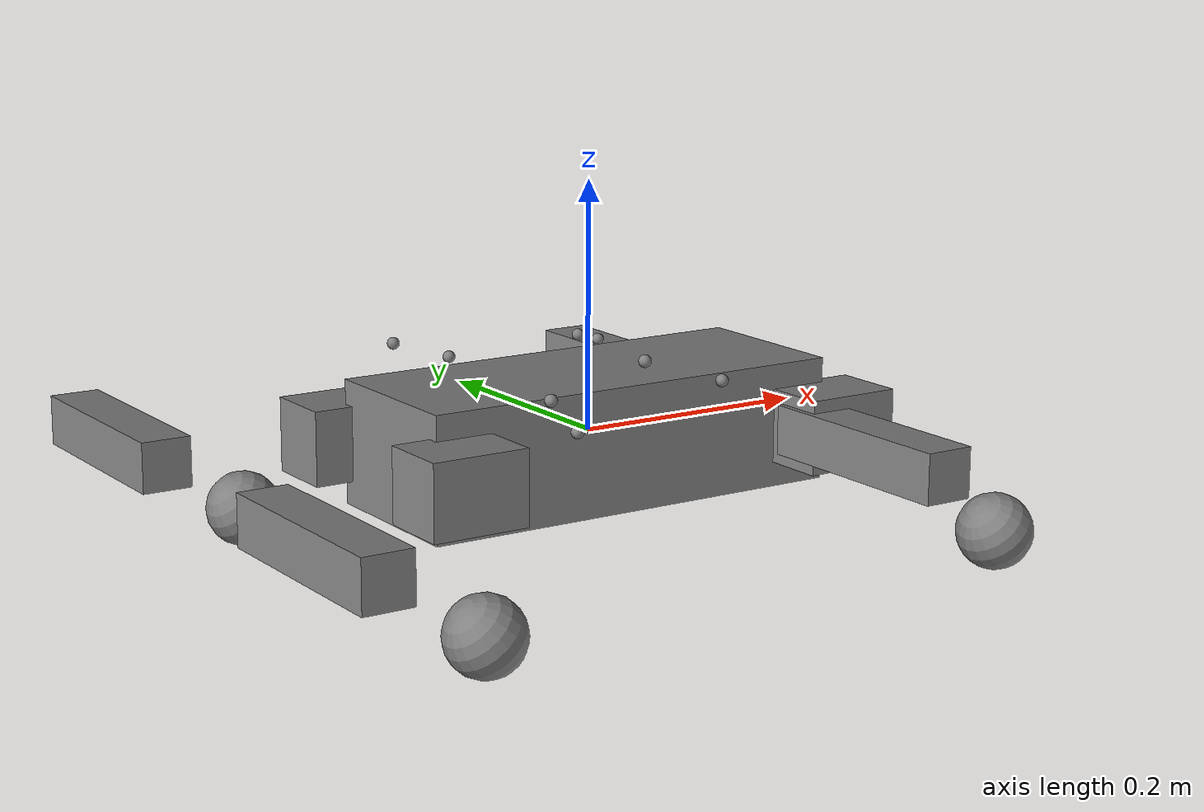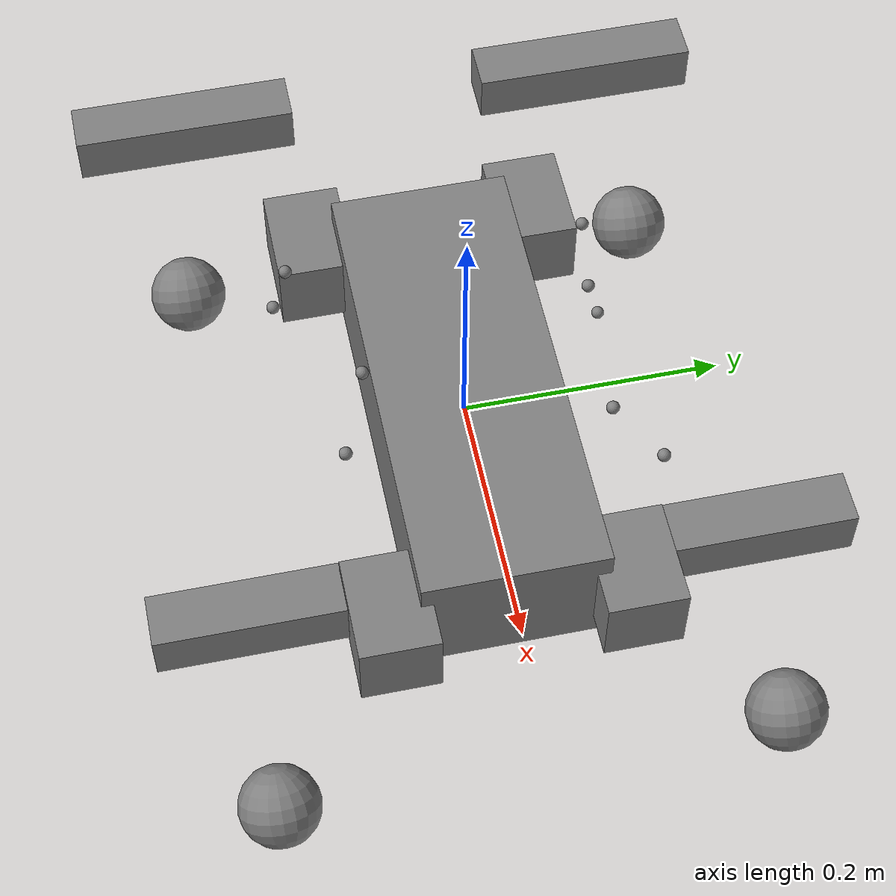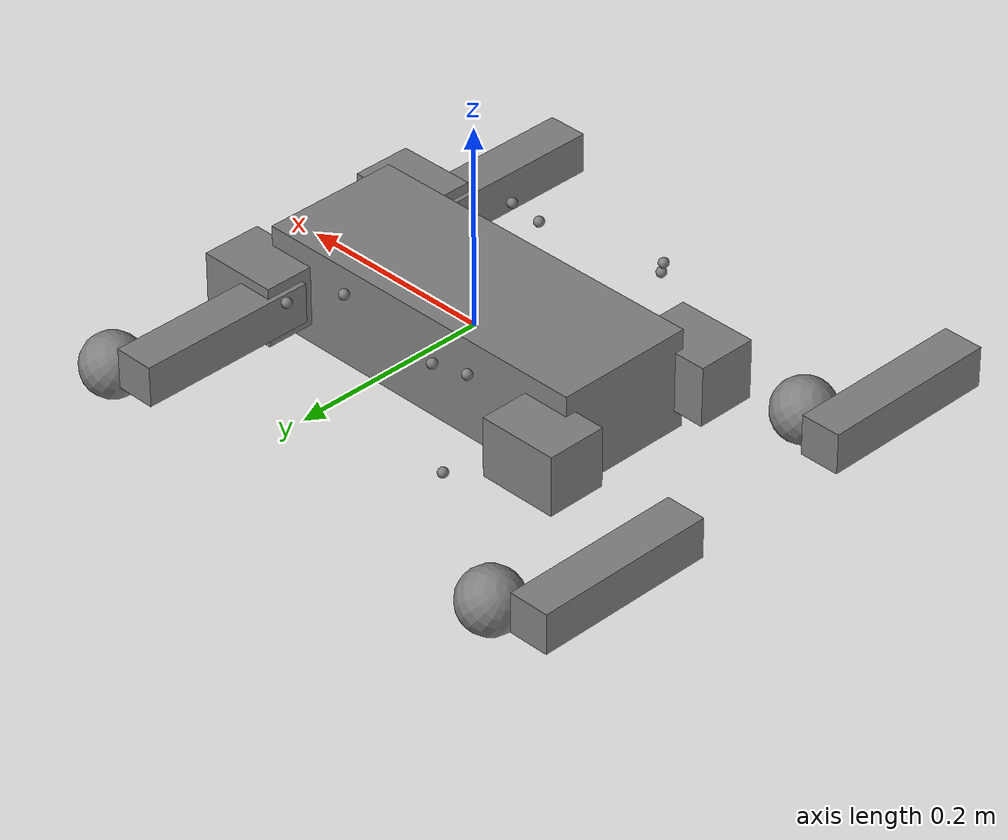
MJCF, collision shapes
<mujoco model="barkour_vb">
  <compiler angle="radian" autolimits="true"/>

  <option cone="elliptic" impratio="100"/>

  <visual>
    <global ellipsoidinertia="true"/>
  </visual>

  <default>
    <default class="bkvb">
      <geom friction="0.4" margin="0.001" condim="1"/>
      <joint damping="0.024" frictionloss="0.13" armature="0.011"/>
      <motor ctrlrange="-18 18"/>
      <site group="5"/>

      <default class="visual">
        <geom type="mesh" contype="0" conaffinity="0" group="1" density="0"/>
      </default>
      <default class="collision">
        <geom group="3"/>
      </default>
      <default class="foot">
        <geom type="sphere" size="0.031" priority="1" condim="6"
          solimp="0.015 1 0.031" friction="0.8 0.02 0.01"/>
      </default>

      <default class="bkvb/vicon">
        <site group="0"/>
      </default>

      <default class="bkvb/abduction">
        <joint range="-1.0472 1.0472"/>
        <motor ctrlrange="-0.9472 0.9472"/>
      </default>
      <default class="bkvb/hip">
        <joint range="-1.54706 3.02902"/>
        <motor ctrlrange="-1.44706 2.92902"/>
      </default>
      <default class="bkvb/knee">
        <joint range="0 2.44346"/>
        <motor ctrlrange="0.1 2.34346"/>
      </default>
    </default>
  </default>

  <asset>
    <mesh name="camera_cover"                       file="assets/camera_cover.stl"/>
    <mesh name="neck"                               file="assets/neck.stl"/>
    <mesh name="intel_realsense_depth_camera_d435"  file="assets/intel_realsense_depth_camera_d435.stl"/>
    <mesh name="handle"                             file="assets/handle.stl"/>
    <mesh name="torso"                              file="assets/torso.stl"/>
    <mesh name="abduction"                          file="assets/abduction.stl"/>
    <mesh name="upper_leg"                          file="assets/upper_leg.stl"/>
    <mesh name="upper_leg_left"                     file="assets/upper_leg_left.stl"/>
    <mesh name="upper_leg_right"                    file="assets/upper_leg_right.stl"/>
    <mesh name="lower_leg"                          file="assets/lower_leg.stl"/>
    <mesh name="foot"                               file="assets/foot.stl"/>
  </asset>

  <worldbody>
    <body name="torso" childclass="bkvb">
      <freejoint name="torso"/>
      <camera name="track" pos="0.846 -1.465 0.916" xyaxes="0.866 0.500 0.000 -0.171 0.296 0.940" mode="trackcom"/>
      <inertial pos="0.0055238 -0.000354563 0.00835899"
        quat="-0.00150849 0.694899 -0.000198355 0.719106"
        mass="6.04352"
        diaginertia="0.144664 0.12027 0.0511405"/>

      <!-- torso visual geoms -->
      <geom mesh="neck"                              rgba="0.8 0.74902 0.913725 1" pos="-7.85127e-05 -0.000500734 0"                             class="visual"/>
      <geom mesh="camera_cover"                      rgba="0.8 0.74902 0.913725 1" pos="-7.85127e-05 -0.000500734 0"                             class="visual"/>
      <geom mesh="handle"                            rgba="0.8 0.74902 0.913725 1" pos="-7.85127e-05 -0.000500734 0"                             class="visual"/>
      <geom mesh="intel_realsense_depth_camera_d435" rgba="0.8 0.74902 0.913725 1" pos="0.319921 -0.000500734 0.0651248" quat="1 0 0 1"         class="visual"/>
      <geom mesh="torso"                             rgba="0.8 0.74902 0.913725 1" pos="-7.85127e-05 -0.000500734 0"                             class="visual"/>

      <!-- torso collision: simple box approximating the main body -->
      <geom size="0.18 0.07 0.05" pos="0 0 0" type="box" class="collision"/>

      <site name="imu_frame"   pos="0.010715 -0.00025 -0.06" quat="0 0 0 1"/>
      <site name="base_frame"/>
      <site name="vicon_frame"/>

      <!-- cameras / dummy bodies (kept as-is, not collision-relevant) -->
      <body pos="0.3176 0.017 0.065" quat="1 -1 1 -1">
        <site name="head_camera_frame"/>
        <camera name="realsense/depth" fovy="62" quat="0 1 0 0"/>
        <site name="realsense/depth_frame" quat="0 1 0 0"/>
        <camera name="realsense/rgb" fovy="42.5" pos="0 0.015 0" quat="0 1 0 0"/>
        <site name="realsense/rgb_frame" pos="0 0.015 0" quat="0 1 0 0"/>
        <site name="realsense/imu"/>
      </body>
      <body pos="0.08632 0 0.1213" quat="1 -1 1 -1" name="oak/">
        <site name="handle_camera_frame"/>
        <camera name="oak/rgb" pos="0 0 0.0125" quat="0 -1 -0 -0" resolution="96 60"
          focalpixel="66.55567095 66.53559105" principalpixel="-1.1446674 -1.8664293"
          sensorsize="0.000288 0.00018"/>
      </body>

      <!-- vicon markers -->
      <site name="vicon_0" class="bkvb/vicon" pos="-0.110864 -0.117663 0.061736"/>
      <site name="vicon_1" class="bkvb/vicon" pos="-0.110864 0.116662 0.0617363"  quat="0.965087 -0.209027 0.154269 -0.0334129"/>
      <site name="vicon_2" class="bkvb/vicon" pos="-0.0625744 0.11068 0.0458139"  quat="0.900548 -0.434757 0 0"/>
      <site name="vicon_3" class="bkvb/vicon" pos="0.0561715 0.100042 0.0527394"  quat="0.98926 -0.146166 0 0"/>
      <site name="vicon_4" class="bkvb/vicon" pos="0.0960704 0.129697 0.0389732"  quat="0.767626 -0.517423 -0.313596 0.211381"/>
      <site name="vicon_5" class="bkvb/vicon" pos="-0.0962327 0.13163 -0.0388594" quat="0.529619 -0.759572 0.215948 -0.309709"/>
      <site name="vicon_6" class="bkvb/vicon" pos="-7.85127e-05 -0.0778626 0.070357" quat="0.94293 0.33299 0 0"/>
      <site name="vicon_8" class="bkvb/vicon" pos="-0.0962274 -0.130699 0.0389732" quat="0.767626 0.517423 0.313596 0.211381"/>
      <site name="vicon_9" class="bkvb/vicon" pos="0.0561715 -0.101043 0.0527394"  quat="0.98926 0.146166 0 0"/>

      <!-- ===================== FRONT LEFT ===================== -->
      <body name="leg_front_left" pos="0.171671 0.0892493 -9.8e-06" quat="1 -1 -1 1">
        <inertial pos="0.00547726 -0.000288034 -0.0602191"
          quat="0.999837 0.0103892 -0.0143715 -0.00325656"
          mass="0.787"
          diaginertia="0.00143831 0.00117023 0.00100011"/>
        <joint name="abduction_front_left" class="bkvb/abduction" type="hinge" axis="1 0 0"/>
        <geom mesh="abduction" rgba="0.980392 0.713726 0.00392157 1" pos="0 0.000111373 0.0029" quat="1 1 0 0" class="visual"/>
        <geom size="0.03 0.03 0.04" pos="0 0 0" type="box" class="collision"/>

        <body name="upper_leg_front_left" pos="0.03085 0 -0.065" quat="0 -1 0 1">
          <inertial pos="-0.0241397 0.00402429 -0.0453038"
            quat="0.0673193 0.647966 -0.00518142 0.75867"
            mass="1.155"
            diaginertia="0.00562022 0.00519471 0.0012633"/>
          <joint name="hip_front_left" class="bkvb/hip" type="hinge" axis="0 1 0"/>
          <geom mesh="upper_leg"       rgba="0.615686 0.811765 0.929412 1" pos="0.0679 0.000111373 0.03085"  quat="1 1 1 -1"  class="visual"/>
          <geom mesh="upper_leg_left"  rgba="0.972549 0.529412 0.00392157 1" pos="0 0 -0.05075"             quat="0 0 1 0"   class="visual"/>
          <geom size="0.02 0.02 0.09" pos="-0.09 0 -0.05" type="box" class="collision"/>

          <body name="lower_leg_front_left" pos="-0.19 0 -0.069575" quat="0 0 1 0">
            <inertial pos="-0.0895493 -0.0301957 -3.02082e-08"
              quat="-0.101465 0.699789 0.101465 0.699789"
              mass="0.171238"
              diaginertia="0.00137406 0.00135746 3.05521e-05"/>
            <joint name="knee_front_left" class="bkvb/knee" type="hinge" axis="0 1 0"/>
            <geom mesh="lower_leg" rgba="0.615686 0.811765 0.929412 1" pos="-0.0649838 0.178542 0" quat="0.819152 0 0 -0.573576" class="visual"/>
            <geom mesh="foot"      rgba="0.231373 0.380392 0.705882 1" pos="-0.0649838 0.178542 0" quat="0.819152 0 0 -0.573576" class="visual"/>
            <geom pos="-0.21425 -0.0779806 0" quat="0.664463 0.664463 -0.241845 -0.241845" class="foot"/>
            <site name="foot_front_left" pos="-0.21425 -0.0779806 0" quat="0.664463 0.664463 -0.241845 -0.241845"/>
          </body>
        </body>
      </body>

      <!-- ===================== HIND LEFT ===================== -->
      <body name="leg_hind_left" pos="-0.171829 0.0892493 -9.8e-06" quat="1 -1 -1 1">
        <inertial pos="0.00547726 0.000288034 0.0602191"
          quat="0.999837 0.0103892 0.0143715 0.00325656"
          mass="0.787"
          diaginertia="0.00143831 0.00117023 0.00100011"/>
        <joint name="abduction_hind_left" class="bkvb/abduction" type="hinge" axis="1 0 0"/>
        <geom mesh="abduction" rgba="0.980392 0.713726 0.00392157 1" pos="0 -0.000111373 -0.0029" quat="1 -1 0 0" class="visual"/>
        <geom size="0.03 0.03 0.04" pos="0 0 0" type="box" class="collision"/>

        <body name="upper_leg_hind_left" pos="0.03085 0 0.065" quat="0 1 0 -1">
          <inertial pos="-0.0241397 0.00402429 -0.0453038"
            quat="0.0673193 0.647966 -0.00518142 0.75867"
            mass="1.155"
            diaginertia="0.00562022 0.00519471 0.0012633"/>
          <joint name="hip_hind_left" class="bkvb/hip" type="hinge" axis="0 1 0"/>
          <geom mesh="upper_leg"      rgba="0.615686 0.811765 0.929412 1"  pos="0.0679 0.000111373 0.03085" quat="1 1 1 -1" class="visual"/>
          <geom mesh="upper_leg_left" rgba="0.972549 0.529412 0.00392157 1" pos="0 0 -0.05075"             quat="0 0 1 0"  class="visual"/>
          <geom size="0.02 0.02 0.09" pos="-0.09 0 -0.05" type="box" class="collision"/>

          <body name="lower_leg_2" pos="-0.19 0 -0.069925" quat="0 0 1 0">
            <inertial pos="-0.0895493 -0.0301957 -3.02082e-08"
              quat="-0.101465 0.699789 0.101465 0.699789"
              mass="0.171238"
              diaginertia="0.00137406 0.00135746 3.05521e-05"/>
            <joint name="knee_hind_left" class="bkvb/knee" type="hinge" axis="0 1 0"/>
            <geom mesh="lower_leg" rgba="0.615686 0.811765 0.929412 1" pos="-0.0649838 0.178542 0" quat="0.819152 0 0 -0.573576" class="visual"/>
            <geom mesh="foot"      rgba="0.231373 0.380392 0.705882 1" pos="-0.0649838 0.178542 0" quat="0.819152 0 0 -0.573576" class="visual"/>
            <geom pos="-0.21425 -0.0779806 0" quat="0.664463 0.664463 -0.241845 -0.241845" class="foot"/>
            <site name="foot_hind_left" pos="-0.21425 -0.0779806 0" quat="0.664463 0.664463 -0.241845 -0.241845"/>
          </body>
        </body>
      </body>

      <!-- ===================== FRONT RIGHT ===================== -->
      <body name="leg_front_right" pos="0.171671 -0.0907507 -9.8e-06" quat="1 -1 1 -1">
        <inertial pos="0.00547726 0.000288034 0.0602191"
          quat="0.999837 0.0103892 0.0143715 0.00325656"
          mass="0.787"
          diaginertia="0.00143831 0.00117023 0.00100011"/>
        <joint name="abduction_front_right" class="bkvb/abduction" type="hinge" axis="1 0 0"/>
        <geom mesh="abduction" rgba="0.980392 0.713726 0.00392157 1" pos="0 -0.000111373 -0.0029" quat="1 -1 0 0" class="visual"/>
        <geom size="0.03 0.03 0.04" pos="0 0 0" type="box" class="collision"/>

        <body name="upper_leg_front_right" pos="0.03085 0 0.065" quat="0 -1 0 -1">
          <inertial pos="-0.0241393 0.00324567 0.0453036"
            quat="-0.00604983 0.756969 -0.0854547 0.64781"
            mass="1.155"
            diaginertia="0.00563107 0.00519539 0.00126472"/>
          <joint name="hip_front_right" class="bkvb/hip" type="hinge" axis="0 1 0"/>
          <geom mesh="upper_leg"        rgba="0.615686 0.811765 0.929412 1"  pos="0.0679 -0.000111373 -0.03085" quat="1 -1 -1 -1" class="visual"/>
          <geom mesh="upper_leg_right"  rgba="0.513726 0.737255 0.407843 1"  pos="0 0 0.05075"                  quat="0 0 -1 0"   class="visual"/>
          <geom size="0.02 0.02 0.09" pos="-0.09 0 0.05" type="box" class="collision"/>

          <body name="lower_leg_3" pos="-0.19 0 0.069575" quat="0 0 -1 0">
            <inertial pos="-0.0895493 -0.0301957 -3.02082e-08"
              quat="-0.101465 0.699789 0.101465 0.699789"
              mass="0.171238"
              diaginertia="0.00137406 0.00135746 3.05521e-05"/>
            <joint name="knee_front_right" class="bkvb/knee" type="hinge" axis="0 1 0"/>
            <geom mesh="lower_leg" rgba="0.615686 0.811765 0.929412 1" pos="-0.0649838 0.178542 0" quat="0.819152 0 0 -0.573576" class="visual"/>
            <geom mesh="foot"      rgba="0.231373 0.380392 0.705882 1" pos="-0.0649838 0.178542 0" quat="0.819152 0 0 -0.573576" class="visual"/>
            <geom pos="-0.21425 -0.0779806 0" quat="0.664463 0.664463 -0.241845 -0.241845" class="foot"/>
            <site name="foot_front_right" pos="-0.21425 -0.0779806 0" quat="0.664463 0.664463 -0.241845 -0.241845"/>
          </body>
        </body>
      </body>

      <!-- ===================== HIND RIGHT ===================== -->
      <body name="leg_hind_right" pos="-0.171829 -0.0907507 -9.8e-06" quat="1 -1 1 -1">
        <inertial pos="0.00547726 -0.000288034 -0.0600191"
          quat="0.999837 0.0103892 -0.0143715 -0.00325656"
          mass="0.787"
          diaginertia="0.00143831 0.00117023 0.00100011"/>
        <joint name="abduction_hind_right" class="bkvb/abduction" type="hinge" axis="1 0 0"/>
        <geom mesh="abduction" rgba="0.980392 0.713726 0.00392157 1" pos="0 0.000111373 0.0031" quat="1 1 0 0" class="visual"/>
        <geom size="0.03 0.03 0.04" pos="0 0 0" type="box" class="collision"/>

        <body name="upper_leg_hind_right" pos="0.03085 0 -0.0648" quat="0 1 0 1">
          <inertial pos="-0.0241393 0.00324567 0.0453036"
            quat="-0.00604983 0.756969 -0.0854547 0.64781"
            mass="1.155"
            diaginertia="0.00563107 0.00519539 0.00126472"/>
          <joint name="hip_hind_right" class="bkvb/hip" type="hinge" axis="0 1 0"/>
          <geom mesh="upper_leg"       rgba="0.615686 0.811765 0.929412 1" pos="0.0679 -0.000111373 -0.03085" quat="1 -1 -1 -1" class="visual"/>
          <geom mesh="upper_leg_right" rgba="0.513726 0.737255 0.407843 1" pos="0 0 0.05075"                  quat="0 0 -1 0"   class="visual"/>
          <geom size="0.02 0.02 0.09" pos="-0.09 0 0.05" type="box" class="collision"/>

          <body name="lower_leg_4" pos="-0.19 0 0.069575" quat="0 0 -1 0">
            <inertial pos="-0.0895493 -0.0301957 -3.02082e-08"
              quat="-0.101465 0.699789 0.101465 0.699789"
              mass="0.171238"
              diaginertia="0.00137406 0.00135746 3.05521e-05"/>
            <joint name="knee_hind_right" class="bkvb/knee" type="hinge" axis="0 1 0"/>
            <geom mesh="lower_leg" rgba="0.615686 0.811765 0.929412 1" pos="-0.0649838 0.178542 0" quat="0.819152 0 0 -0.573576" class="visual"/>
            <geom mesh="foot"      rgba="0.231373 0.380392 0.705882 1" pos="-0.0649838 0.178542 0" quat="0.819152 0 0 -0.573576" class="visual"/>
            <geom pos="-0.21425 -0.0779806 0" quat="0.664463 0.664463 -0.241845 -0.241845" class="foot"/>
            <site name="foot_hind_right" pos="-0.21425 -0.0779806 0" quat="0.664463 0.664463 -0.241845 -0.241845"/>
          </body>
        </body>
      </body>

    </body>
  </worldbody>

  <actuator>
    <motor name="abduction_front_left"  joint="abduction_front_left"  gear="1" class="bkvb/abduction"/>
    <motor name="hip_front_left"        joint="hip_front_left"        gear="1" class="bkvb/hip"/>
    <motor name="knee_front_left"       joint="knee_front_left"       gear="1" class="bkvb/knee"/>

    <motor name="abduction_hind_left"   joint="abduction_hind_left"   gear="1" class="bkvb/abduction"/>
    <motor name="hip_hind_left"         joint="hip_hind_left"         gear="1" class="bkvb/hip"/>
    <motor name="knee_hind_left"        joint="knee_hind_left"        gear="1" class="bkvb/knee"/>

    <motor name="abduction_front_right" joint="abduction_front_right" gear="1" class="bkvb/abduction"/>
    <motor name="hip_front_right"       joint="hip_front_right"       gear="1" class="bkvb/hip"/>
    <motor name="knee_front_right"      joint="knee_front_right"      gear="1" class="bkvb/knee"/>

    <motor name="abduction_hind_right"  joint="abduction_hind_right"  gear="1" class="bkvb/abduction"/>
    <motor name="hip_hind_right"        joint="hip_hind_right"        gear="1" class="bkvb/hip"/>
    <motor name="knee_hind_right"       joint="knee_hind_right"       gear="1" class="bkvb/knee"/>
  </actuator>

  <sensor>
    <jointpos joint="abduction_front_left"  name="abduction_front_left_pos"/>
    <jointpos joint="hip_front_left"        name="hip_front_left_pos"/>
    <jointpos joint="knee_front_left"       name="knee_front_left_pos"/>
    <jointpos joint="abduction_hind_left"   name="abduction_hind_left_pos"/>
    <jointpos joint="hip_hind_left"         name="hip_hind_left_pos"/>
    <jointpos joint="knee_hind_left"        name="knee_hind_left_pos"/>
    <jointpos joint="abduction_front_right" name="abduction_front_right_pos"/>
    <jointpos joint="hip_front_right"       name="hip_front_right_pos"/>
    <jointpos joint="knee_front_right"      name="knee_front_right_pos"/>
    <jointpos joint="abduction_hind_right"  name="abduction_hind_right_pos"/>
    <jointpos joint="hip_hind_right"        name="hip_hind_right_pos"/>
    <jointpos joint="knee_hind_right"       name="knee_hind_right_pos"/>

    <jointvel joint="abduction_front_left"  name="abduction_front_left_vel"/>
    <jointvel joint="hip_front_left"        name="hip_front_left_vel"/>
    <jointvel joint="knee_front_left"       name="knee_front_left_vel"/>
    <jointvel joint="abduction_hind_left"   name="abduction_hind_left_vel"/>
    <jointvel joint="hip_hind_left"         name="hip_hind_left_vel"/>
    <jointvel joint="knee_hind_left"        name="knee_hind_left_vel"/>
    <jointvel joint="abduction_front_right" name="abduction_front_right_vel"/>
    <jointvel joint="hip_front_right"       name="hip_front_right_vel"/>
    <jointvel joint="knee_front_right"      name="knee_front_right_vel"/>
    <jointvel joint="abduction_hind_right"  name="abduction_hind_right_vel"/>
    <jointvel joint="hip_hind_right"        name="hip_hind_right_vel"/>
    <jointvel joint="knee_hind_right"       name="knee_hind_right_vel"/>

    <gyro         site="imu_frame" name="gyro"/>
    <accelerometer site="imu_frame" name="accelerometer"/>
    <framequat    objtype="site" objname="imu_frame" name="orientation"/>
    <framepos     objtype="site" objname="imu_frame" name="global_position"/>
    <framelinvel  objtype="site" objname="imu_frame" name="global_linvel"/>
    <frameangvel  objtype="site" objname="imu_frame" name="global_angvel"/>
  </sensor>

</mujoco>
